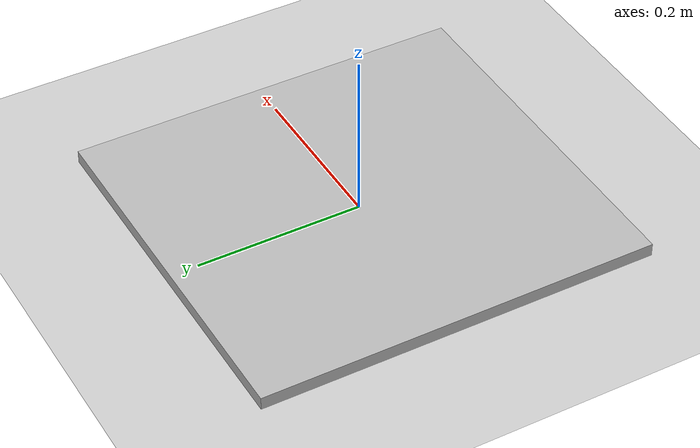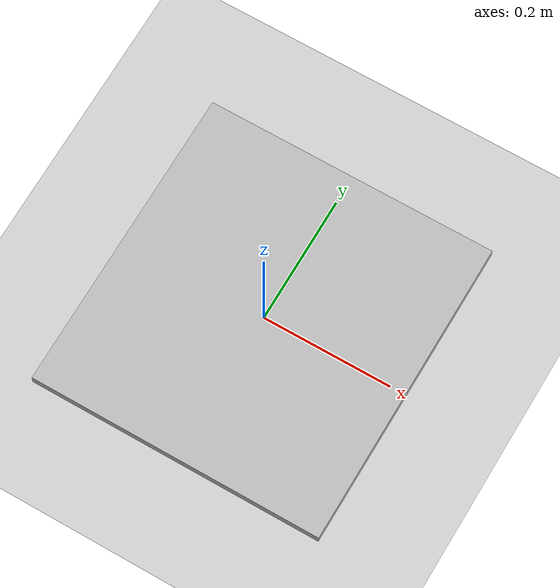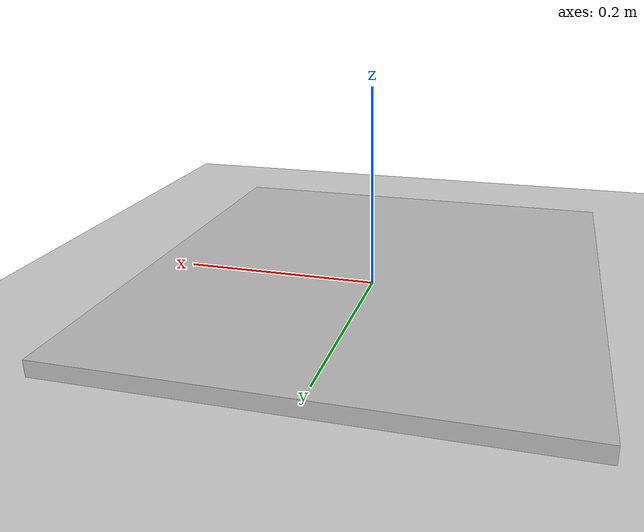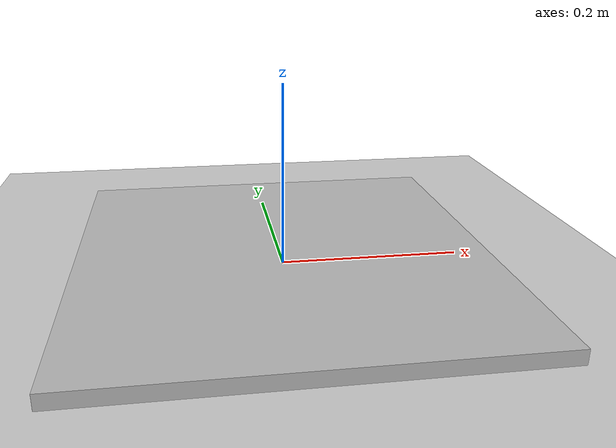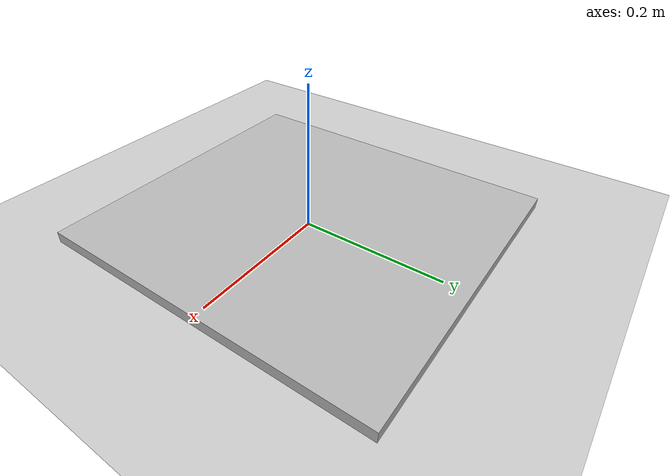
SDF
<?xml version="1.0" ?>
<sdf version="1.4">
  <world name="default">
    <include>
      <uri>model://ground_plane</uri>
    </include>
    <include>
      <uri>model://sun</uri>
    </include>
    <include>
      <uri>model://badukpan</uri>
      <name>badukpan</name>
      <pose>0 0 0 0 0 0</pose>
    </include>
  </world>
</sdf>

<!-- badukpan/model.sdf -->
<sdf version="1.4">
<model name="badukpan">
  <pose>0 0 0.5 0 0 0</pose>
  <static>true</static>
    <link name="link">
      <inertial>
        <mass>1.0</mass>
        <inertia> <!-- interias are tricky to compute -->
          <!-- http://answers.gazebosim.org/question/4372/the-inertia-matrix-explained/ -->
          <ixx>0.083</ixx>       <!-- for a box: ixx = 0.083 * mass * (y*y + z*z) -->
          <ixy>0.0</ixy>         <!-- for a box: ixy = 0 -->
          <ixz>0.0</ixz>         <!-- for a box: ixz = 0 -->
          <iyy>0.083</iyy>       <!-- for a box: iyy = 0.083 * mass * (x*x + z*z) -->
          <iyz>0.0</iyz>         <!-- for a box: iyz = 0 -->
          <izz>0.083</izz>       <!-- for a box: izz = 0.083 * mass * (x*x + y*y) -->
        </inertia>
      </inertial>
      <collision name="collision">
        <geometry>
          <box>
            <size>0.45 0.48 0.03</size>
          </box>
        </geometry>
      </collision>
      <visual name="visual">
        <geometry>
          <box>
            <size>0.45 0.48 0.03</size>
          </box>
        </geometry>
        <material>
          <script>
            <uri>model://badukpan/materials/scripts</uri>
            <uri>model://badukpan/materials/textures</uri>
            <name>badukpan/badukpan</name>
          </script>
        </material>
      </visual>
    </link>
  </model>
</sdf>
